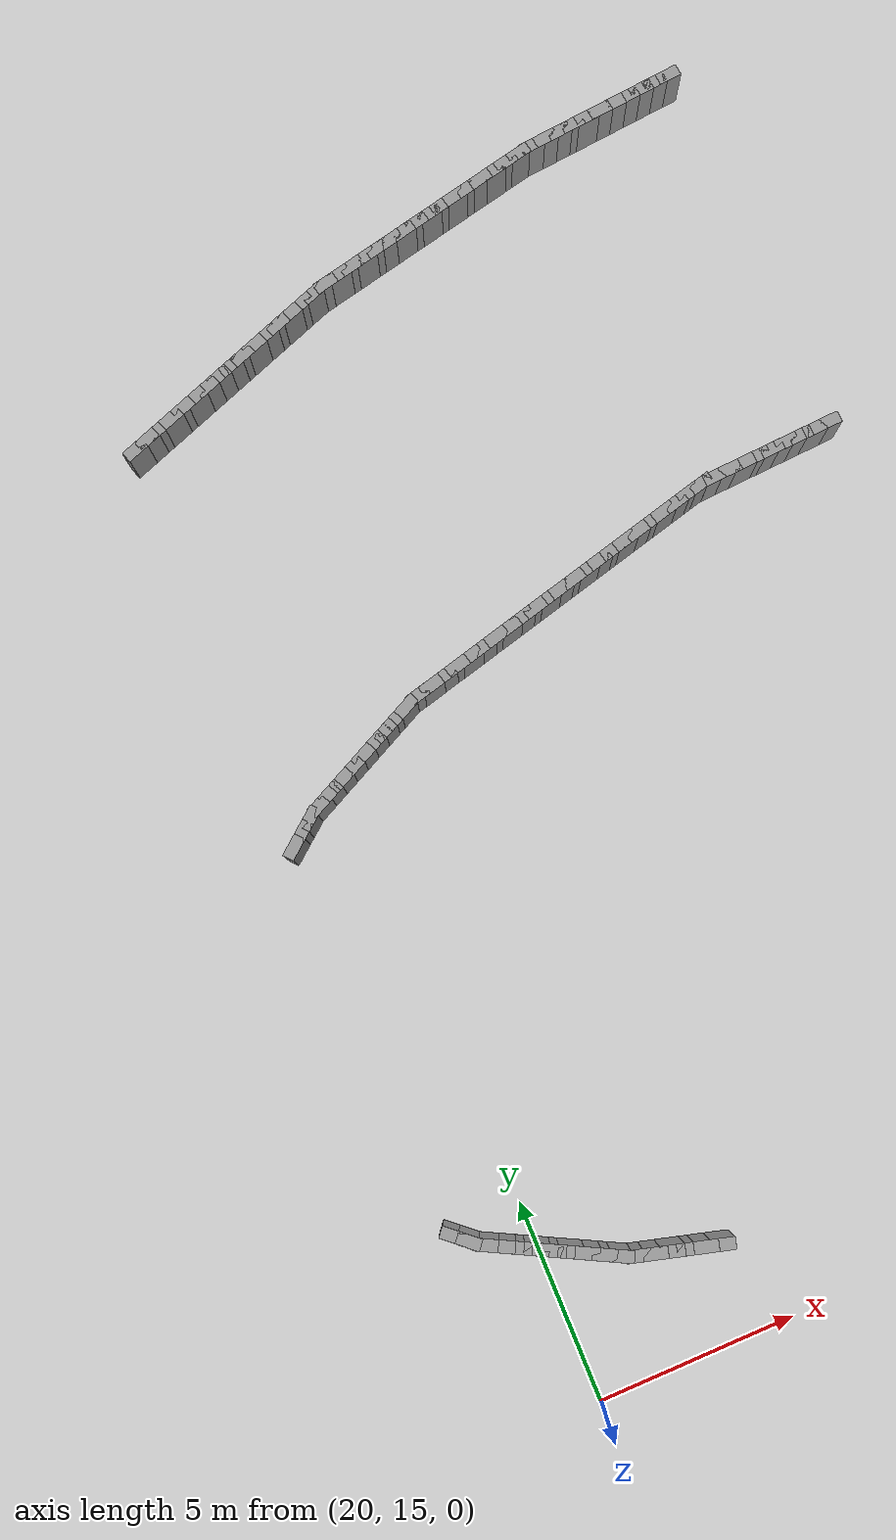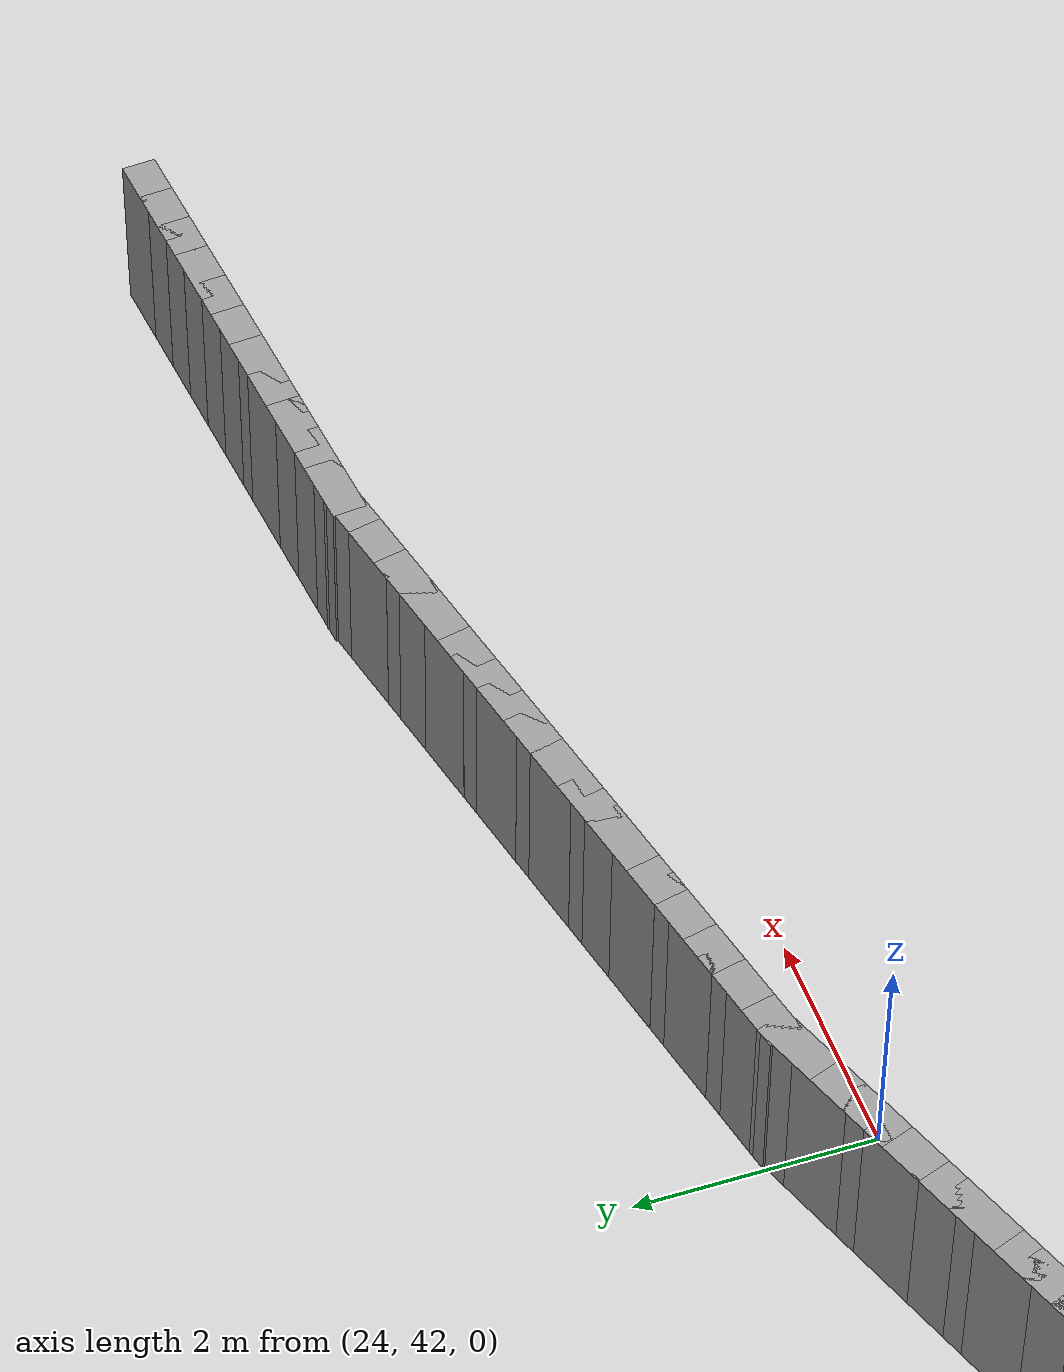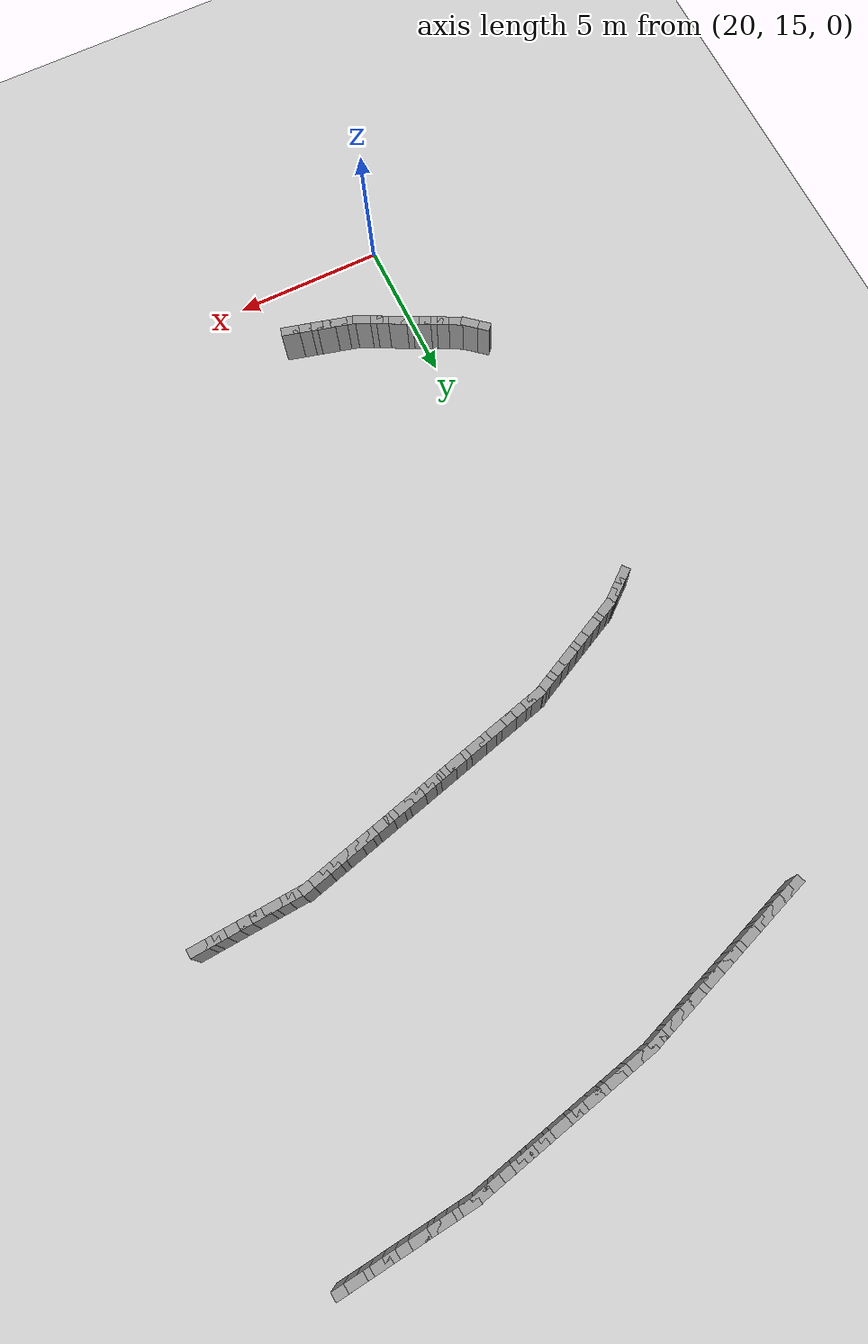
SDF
<sdf version="1.5">
 <world name="ellipse_loop">
  <include><uri>model://sun</uri></include>
  <include><uri>model://ground_plane</uri></include>
  <model name="curbL_349">
   <static>true</static>
   <pose>34.582 44.639 0.750 0 0 -3.042</pose>
   <link name="link">
    <collision name="col"><geometry><box><size>0.600 0.300 1.500</size></box></geometry></collision>
    <visual name="vis">
     <geometry><box><size>0.600 0.300 1.500</size></box></geometry>
     <material><ambient>0.6 0.6 0.6 1</ambient><diffuse>0.6 0.6 0.6 1</diffuse></material>
    </visual>
   </link>
  </model>
  <model name="curbL_350">
   <static>true</static>
   <pose>34.184 44.599 0.750 0 0 -3.042</pose>
   <link name="link">
    <collision name="col"><geometry><box><size>0.600 0.300 1.500</size></box></geometry></collision>
    <visual name="vis">
     <geometry><box><size>0.600 0.300 1.500</size></box></geometry>
     <material><ambient>0.6 0.6 0.6 1</ambient><diffuse>0.6 0.6 0.6 1</diffuse></material>
    </visual>
   </link>
  </model>
  <model name="curbL_351">
   <static>true</static>
   <pose>33.786 44.559 0.750 0 0 -3.042</pose>
   <link name="link">
    <collision name="col"><geometry><box><size>0.600 0.300 1.500</size></box></geometry></collision>
    <visual name="vis">
     <geometry><box><size>0.600 0.300 1.500</size></box></geometry>
     <material><ambient>0.6 0.6 0.6 1</ambient><diffuse>0.6 0.6 0.6 1</diffuse></material>
    </visual>
   </link>
  </model>
  <model name="curbL_352">
   <static>true</static>
   <pose>33.388 44.519 0.750 0 0 -3.042</pose>
   <link name="link">
    <collision name="col"><geometry><box><size>0.600 0.300 1.500</size></box></geometry></collision>
    <visual name="vis">
     <geometry><box><size>0.600 0.300 1.500</size></box></geometry>
     <material><ambient>0.6 0.6 0.6 1</ambient><diffuse>0.6 0.6 0.6 1</diffuse></material>
    </visual>
   </link>
  </model>
  <model name="curbL_353">
   <static>true</static>
   <pose>32.990 44.479 0.750 0 0 -3.042</pose>
   <link name="link">
    <collision name="col"><geometry><box><size>0.600 0.300 1.500</size></box></geometry></collision>
    <visual name="vis">
     <geometry><box><size>0.600 0.300 1.500</size></box></geometry>
     <material><ambient>0.6 0.6 0.6 1</ambient><diffuse>0.6 0.6 0.6 1</diffuse></material>
    </visual>
   </link>
  </model>
  <model name="curbL_354">
   <static>true</static>
   <pose>32.592 44.439 0.750 0 0 -3.042</pose>
   <link name="link">
    <collision name="col"><geometry><box><size>0.600 0.300 1.500</size></box></geometry></collision>
    <visual name="vis">
     <geometry><box><size>0.600 0.300 1.500</size></box></geometry>
     <material><ambient>0.6 0.6 0.6 1</ambient><diffuse>0.6 0.6 0.6 1</diffuse></material>
    </visual>
   </link>
  </model>
  <model name="curbL_355">
   <static>true</static>
   <pose>32.194 44.399 0.750 0 0 -3.042</pose>
   <link name="link">
    <collision name="col"><geometry><box><size>0.600 0.300 1.500</size></box></geometry></collision>
    <visual name="vis">
     <geometry><box><size>0.600 0.300 1.500</size></box></geometry>
     <material><ambient>0.6 0.6 0.6 1</ambient><diffuse>0.6 0.6 0.6 1</diffuse></material>
    </visual>
   </link>
  </model>
  <model name="curbL_356">
   <static>true</static>
   <pose>31.796 44.360 0.750 0 0 -3.042</pose>
   <link name="link">
    <collision name="col"><geometry><box><size>0.600 0.300 1.500</size></box></geometry></collision>
    <visual name="vis">
     <geometry><box><size>0.600 0.300 1.500</size></box></geometry>
     <material><ambient>0.6 0.6 0.6 1</ambient><diffuse>0.6 0.6 0.6 1</diffuse></material>
    </visual>
   </link>
  </model>
  <model name="curbL_357">
   <static>true</static>
   <pose>31.398 44.320 0.750 0 0 -3.042</pose>
   <link name="link">
    <collision name="col"><geometry><box><size>0.600 0.300 1.500</size></box></geometry></collision>
    <visual name="vis">
     <geometry><box><size>0.600 0.300 1.500</size></box></geometry>
     <material><ambient>0.6 0.6 0.6 1</ambient><diffuse>0.6 0.6 0.6 1</diffuse></material>
    </visual>
   </link>
  </model>
  <model name="curbL_358">
   <static>true</static>
   <pose>31.000 44.280 0.750 0 0 -3.042</pose>
   <link name="link">
    <collision name="col"><geometry><box><size>0.600 0.300 1.500</size></box></geometry></collision>
    <visual name="vis">
     <geometry><box><size>0.600 0.300 1.500</size></box></geometry>
     <material><ambient>0.6 0.6 0.6 1</ambient><diffuse>0.6 0.6 0.6 1</diffuse></material>
    </visual>
   </link>
  </model>
  <model name="curbL_359">
   <static>true</static>
   <pose>30.602 44.240 0.750 0 0 -3.042</pose>
   <link name="link">
    <collision name="col"><geometry><box><size>0.600 0.300 1.500</size></box></geometry></collision>
    <visual name="vis">
     <geometry><box><size>0.600 0.300 1.500</size></box></geometry>
     <material><ambient>0.6 0.6 0.6 1</ambient><diffuse>0.6 0.6 0.6 1</diffuse></material>
    </visual>
   </link>
  </model>
  <model name="curbL_360">
   <static>true</static>
   <pose>30.209 44.170 0.750 0 0 -2.921</pose>
   <link name="link">
    <collision name="col"><geometry><box><size>0.600 0.300 1.500</size></box></geometry></collision>
    <visual name="vis">
     <geometry><box><size>0.600 0.300 1.500</size></box></geometry>
     <material><ambient>0.6 0.6 0.6 1</ambient><diffuse>0.6 0.6 0.6 1</diffuse></material>
    </visual>
   </link>
  </model>
  <model name="curbL_361">
   <static>true</static>
   <pose>29.818 44.083 0.750 0 0 -2.921</pose>
   <link name="link">
    <collision name="col"><geometry><box><size>0.600 0.300 1.500</size></box></geometry></collision>
    <visual name="vis">
     <geometry><box><size>0.600 0.300 1.500</size></box></geometry>
     <material><ambient>0.6 0.6 0.6 1</ambient><diffuse>0.6 0.6 0.6 1</diffuse></material>
    </visual>
   </link>
  </model>
  <model name="curbL_362">
   <static>true</static>
   <pose>29.428 43.995 0.750 0 0 -2.921</pose>
   <link name="link">
    <collision name="col"><geometry><box><size>0.600 0.300 1.500</size></box></geometry></collision>
    <visual name="vis">
     <geometry><box><size>0.600 0.300 1.500</size></box></geometry>
     <material><ambient>0.6 0.6 0.6 1</ambient><diffuse>0.6 0.6 0.6 1</diffuse></material>
    </visual>
   </link>
  </model>
  <model name="curbL_363">
   <static>true</static>
   <pose>29.038 43.908 0.750 0 0 -2.921</pose>
   <link name="link">
    <collision name="col"><geometry><box><size>0.600 0.300 1.500</size></box></geometry></collision>
    <visual name="vis">
     <geometry><box><size>0.600 0.300 1.500</size></box></geometry>
     <material><ambient>0.6 0.6 0.6 1</ambient><diffuse>0.6 0.6 0.6 1</diffuse></material>
    </visual>
   </link>
  </model>
  <model name="curbL_364">
   <static>true</static>
   <pose>28.647 43.821 0.750 0 0 -2.921</pose>
   <link name="link">
    <collision name="col"><geometry><box><size>0.600 0.300 1.500</size></box></geometry></collision>
    <visual name="vis">
     <geometry><box><size>0.600 0.300 1.500</size></box></geometry>
     <material><ambient>0.6 0.6 0.6 1</ambient><diffuse>0.6 0.6 0.6 1</diffuse></material>
    </visual>
   </link>
  </model>
  <model name="curbL_365">
   <static>true</static>
   <pose>28.257 43.733 0.750 0 0 -2.921</pose>
   <link name="link">
    <collision name="col"><geometry><box><size>0.600 0.300 1.500</size></box></geometry></collision>
    <visual name="vis">
     <geometry><box><size>0.600 0.300 1.500</size></box></geometry>
     <material><ambient>0.6 0.6 0.6 1</ambient><diffuse>0.6 0.6 0.6 1</diffuse></material>
    </visual>
   </link>
  </model>
  <model name="curbL_366">
   <static>true</static>
   <pose>27.867 43.646 0.750 0 0 -2.921</pose>
   <link name="link">
    <collision name="col"><geometry><box><size>0.600 0.300 1.500</size></box></geometry></collision>
    <visual name="vis">
     <geometry><box><size>0.600 0.300 1.500</size></box></geometry>
     <material><ambient>0.6 0.6 0.6 1</ambient><diffuse>0.6 0.6 0.6 1</diffuse></material>
    </visual>
   </link>
  </model>
  <model name="curbL_367">
   <static>true</static>
   <pose>27.476 43.558 0.750 0 0 -2.921</pose>
   <link name="link">
    <collision name="col"><geometry><box><size>0.600 0.300 1.500</size></box></geometry></collision>
    <visual name="vis">
     <geometry><box><size>0.600 0.300 1.500</size></box></geometry>
     <material><ambient>0.6 0.6 0.6 1</ambient><diffuse>0.6 0.6 0.6 1</diffuse></material>
    </visual>
   </link>
  </model>
  <model name="curbL_368">
   <static>true</static>
   <pose>27.086 43.471 0.750 0 0 -2.921</pose>
   <link name="link">
    <collision name="col"><geometry><box><size>0.600 0.300 1.500</size></box></geometry></collision>
    <visual name="vis">
     <geometry><box><size>0.600 0.300 1.500</size></box></geometry>
     <material><ambient>0.6 0.6 0.6 1</ambient><diffuse>0.6 0.6 0.6 1</diffuse></material>
    </visual>
   </link>
  </model>
  <model name="curbL_369">
   <static>true</static>
   <pose>26.696 43.383 0.750 0 0 -2.921</pose>
   <link name="link">
    <collision name="col"><geometry><box><size>0.600 0.300 1.500</size></box></geometry></collision>
    <visual name="vis">
     <geometry><box><size>0.600 0.300 1.500</size></box></geometry>
     <material><ambient>0.6 0.6 0.6 1</ambient><diffuse>0.6 0.6 0.6 1</diffuse></material>
    </visual>
   </link>
  </model>
  <model name="curbL_370">
   <static>true</static>
   <pose>26.305 43.296 0.750 0 0 -2.921</pose>
   <link name="link">
    <collision name="col"><geometry><box><size>0.600 0.300 1.500</size></box></geometry></collision>
    <visual name="vis">
     <geometry><box><size>0.600 0.300 1.500</size></box></geometry>
     <material><ambient>0.6 0.6 0.6 1</ambient><diffuse>0.6 0.6 0.6 1</diffuse></material>
    </visual>
   </link>
  </model>
  <model name="curbL_371">
   <static>true</static>
   <pose>25.915 43.209 0.750 0 0 -2.921</pose>
   <link name="link">
    <collision name="col"><geometry><box><size>0.600 0.300 1.500</size></box></geometry></collision>
    <visual name="vis">
     <geometry><box><size>0.600 0.300 1.500</size></box></geometry>
     <material><ambient>0.6 0.6 0.6 1</ambient><diffuse>0.6 0.6 0.6 1</diffuse></material>
    </visual>
   </link>
  </model>
  <model name="curbL_372">
   <static>true</static>
   <pose>25.525 43.121 0.750 0 0 -2.921</pose>
   <link name="link">
    <collision name="col"><geometry><box><size>0.600 0.300 1.500</size></box></geometry></collision>
    <visual name="vis">
     <geometry><box><size>0.600 0.300 1.500</size></box></geometry>
     <material><ambient>0.6 0.6 0.6 1</ambient><diffuse>0.6 0.6 0.6 1</diffuse></material>
    </visual>
   </link>
  </model>
  <model name="curbL_373">
   <static>true</static>
   <pose>25.134 43.034 0.750 0 0 -2.921</pose>
   <link name="link">
    <collision name="col"><geometry><box><size>0.600 0.300 1.500</size></box></geometry></collision>
    <visual name="vis">
     <geometry><box><size>0.600 0.300 1.500</size></box></geometry>
     <material><ambient>0.6 0.6 0.6 1</ambient><diffuse>0.6 0.6 0.6 1</diffuse></material>
    </visual>
   </link>
  </model>
  <model name="curbL_374">
   <static>true</static>
   <pose>24.744 42.946 0.750 0 0 -2.921</pose>
   <link name="link">
    <collision name="col"><geometry><box><size>0.600 0.300 1.500</size></box></geometry></collision>
    <visual name="vis">
     <geometry><box><size>0.600 0.300 1.500</size></box></geometry>
     <material><ambient>0.6 0.6 0.6 1</ambient><diffuse>0.6 0.6 0.6 1</diffuse></material>
    </visual>
   </link>
  </model>
  <model name="curbL_375">
   <static>true</static>
   <pose>24.354 42.859 0.750 0 0 -2.921</pose>
   <link name="link">
    <collision name="col"><geometry><box><size>0.600 0.300 1.500</size></box></geometry></collision>
    <visual name="vis">
     <geometry><box><size>0.600 0.300 1.500</size></box></geometry>
     <material><ambient>0.6 0.6 0.6 1</ambient><diffuse>0.6 0.6 0.6 1</diffuse></material>
    </visual>
   </link>
  </model>
  <model name="curbL_376">
   <static>true</static>
   <pose>23.973 42.740 0.750 0 0 -2.789</pose>
   <link name="link">
    <collision name="col"><geometry><box><size>0.600 0.300 1.500</size></box></geometry></collision>
    <visual name="vis">
     <geometry><box><size>0.600 0.300 1.500</size></box></geometry>
     <material><ambient>0.6 0.6 0.6 1</ambient><diffuse>0.6 0.6 0.6 1</diffuse></material>
    </visual>
   </link>
  </model>
  <model name="curbL_377">
   <static>true</static>
   <pose>23.597 42.602 0.750 0 0 -2.789</pose>
   <link name="link">
    <collision name="col"><geometry><box><size>0.600 0.300 1.500</size></box></geometry></collision>
    <visual name="vis">
     <geometry><box><size>0.600 0.300 1.500</size></box></geometry>
     <material><ambient>0.6 0.6 0.6 1</ambient><diffuse>0.6 0.6 0.6 1</diffuse></material>
    </visual>
   </link>
  </model>
  <model name="curbL_378">
   <static>true</static>
   <pose>23.222 42.464 0.750 0 0 -2.789</pose>
   <link name="link">
    <collision name="col"><geometry><box><size>0.600 0.300 1.500</size></box></geometry></collision>
    <visual name="vis">
     <geometry><box><size>0.600 0.300 1.500</size></box></geometry>
     <material><ambient>0.6 0.6 0.6 1</ambient><diffuse>0.6 0.6 0.6 1</diffuse></material>
    </visual>
   </link>
  </model>
  <model name="curbL_379">
   <static>true</static>
   <pose>22.846 42.326 0.750 0 0 -2.789</pose>
   <link name="link">
    <collision name="col"><geometry><box><size>0.600 0.300 1.500</size></box></geometry></collision>
    <visual name="vis">
     <geometry><box><size>0.600 0.300 1.500</size></box></geometry>
     <material><ambient>0.6 0.6 0.6 1</ambient><diffuse>0.6 0.6 0.6 1</diffuse></material>
    </visual>
   </link>
  </model>
  <model name="curbL_380">
   <static>true</static>
   <pose>22.471 42.188 0.750 0 0 -2.789</pose>
   <link name="link">
    <collision name="col"><geometry><box><size>0.600 0.300 1.500</size></box></geometry></collision>
    <visual name="vis">
     <geometry><box><size>0.600 0.300 1.500</size></box></geometry>
     <material><ambient>0.6 0.6 0.6 1</ambient><diffuse>0.6 0.6 0.6 1</diffuse></material>
    </visual>
   </link>
  </model>
  <model name="curbL_381">
   <static>true</static>
   <pose>22.096 42.050 0.750 0 0 -2.789</pose>
   <link name="link">
    <collision name="col"><geometry><box><size>0.600 0.300 1.500</size></box></geometry></collision>
    <visual name="vis">
     <geometry><box><size>0.600 0.300 1.500</size></box></geometry>
     <material><ambient>0.6 0.6 0.6 1</ambient><diffuse>0.6 0.6 0.6 1</diffuse></material>
    </visual>
   </link>
  </model>
  <model name="curbL_382">
   <static>true</static>
   <pose>21.720 41.912 0.750 0 0 -2.789</pose>
   <link name="link">
    <collision name="col"><geometry><box><size>0.600 0.300 1.500</size></box></geometry></collision>
    <visual name="vis">
     <geometry><box><size>0.600 0.300 1.500</size></box></geometry>
     <material><ambient>0.6 0.6 0.6 1</ambient><diffuse>0.6 0.6 0.6 1</diffuse></material>
    </visual>
   </link>
  </model>
  <model name="curbL_383">
   <static>true</static>
   <pose>21.345 41.774 0.750 0 0 -2.789</pose>
   <link name="link">
    <collision name="col"><geometry><box><size>0.600 0.300 1.500</size></box></geometry></collision>
    <visual name="vis">
     <geometry><box><size>0.600 0.300 1.500</size></box></geometry>
     <material><ambient>0.6 0.6 0.6 1</ambient><diffuse>0.6 0.6 0.6 1</diffuse></material>
    </visual>
   </link>
  </model>
  <model name="curbL_384">
   <static>true</static>
   <pose>20.969 41.635 0.750 0 0 -2.789</pose>
   <link name="link">
    <collision name="col"><geometry><box><size>0.600 0.300 1.500</size></box></geometry></collision>
    <visual name="vis">
     <geometry><box><size>0.600 0.300 1.500</size></box></geometry>
     <material><ambient>0.6 0.6 0.6 1</ambient><diffuse>0.6 0.6 0.6 1</diffuse></material>
    </visual>
   </link>
  </model>
  <model name="curbL_385">
   <static>true</static>
   <pose>20.594 41.497 0.750 0 0 -2.789</pose>
   <link name="link">
    <collision name="col"><geometry><box><size>0.600 0.300 1.500</size></box></geometry></collision>
    <visual name="vis">
     <geometry><box><size>0.600 0.300 1.500</size></box></geometry>
     <material><ambient>0.6 0.6 0.6 1</ambient><diffuse>0.6 0.6 0.6 1</diffuse></material>
    </visual>
   </link>
  </model>
  <model name="curbL_386">
   <static>true</static>
   <pose>20.219 41.359 0.750 0 0 -2.789</pose>
   <link name="link">
    <collision name="col"><geometry><box><size>0.600 0.300 1.500</size></box></geometry></collision>
    <visual name="vis">
     <geometry><box><size>0.600 0.300 1.500</size></box></geometry>
     <material><ambient>0.6 0.6 0.6 1</ambient><diffuse>0.6 0.6 0.6 1</diffuse></material>
    </visual>
   </link>
  </model>
  <model name="curbL_387">
   <static>true</static>
   <pose>19.843 41.221 0.750 0 0 -2.789</pose>
   <link name="link">
    <collision name="col"><geometry><box><size>0.600 0.300 1.500</size></box></geometry></collision>
    <visual name="vis">
     <geometry><box><size>0.600 0.300 1.500</size></box></geometry>
     <material><ambient>0.6 0.6 0.6 1</ambient><diffuse>0.6 0.6 0.6 1</diffuse></material>
    </visual>
   </link>
  </model>
  <model name="curbL_388">
   <static>true</static>
   <pose>19.468 41.083 0.750 0 0 -2.789</pose>
   <link name="link">
    <collision name="col"><geometry><box><size>0.600 0.300 1.500</size></box></geometry></collision>
    <visual name="vis">
     <geometry><box><size>0.600 0.300 1.500</size></box></geometry>
     <material><ambient>0.6 0.6 0.6 1</ambient><diffuse>0.6 0.6 0.6 1</diffuse></material>
    </visual>
   </link>
  </model>
  <model name="curbL_389">
   <static>true</static>
   <pose>19.092 40.945 0.750 0 0 -2.789</pose>
   <link name="link">
    <collision name="col"><geometry><box><size>0.600 0.300 1.500</size></box></geometry></collision>
    <visual name="vis">
     <geometry><box><size>0.600 0.300 1.500</size></box></geometry>
     <material><ambient>0.6 0.6 0.6 1</ambient><diffuse>0.6 0.6 0.6 1</diffuse></material>
    </visual>
   </link>
  </model>
  <model name="curbL_390">
   <static>true</static>
   <pose>18.717 40.807 0.750 0 0 -2.789</pose>
   <link name="link">
    <collision name="col"><geometry><box><size>0.600 0.300 1.500</size></box></geometry></collision>
    <visual name="vis">
     <geometry><box><size>0.600 0.300 1.500</size></box></geometry>
     <material><ambient>0.6 0.6 0.6 1</ambient><diffuse>0.6 0.6 0.6 1</diffuse></material>
    </visual>
   </link>
  </model>
  <model name="curbL_391">
   <static>true</static>
   <pose>18.342 40.669 0.750 0 0 -2.789</pose>
   <link name="link">
    <collision name="col"><geometry><box><size>0.600 0.300 1.500</size></box></geometry></collision>
    <visual name="vis">
     <geometry><box><size>0.600 0.300 1.500</size></box></geometry>
     <material><ambient>0.6 0.6 0.6 1</ambient><diffuse>0.6 0.6 0.6 1</diffuse></material>
    </visual>
   </link>
  </model>
  <model name="curbR_15">
   <static>true</static>
   <pose>18.272 29.937 0.750 0 0 0.683</pose>
   <link name="link">
    <collision name="col"><geometry><box><size>0.600 0.300 1.500</size></box></geometry></collision>
    <visual name="vis">
     <geometry><box><size>0.600 0.300 1.500</size></box></geometry>
     <material><ambient>0.6 0.6 0.6 1</ambient><diffuse>0.6 0.6 0.6 1</diffuse></material>
    </visual>
   </link>
  </model>
  <model name="curbR_16">
   <static>true</static>
   <pose>18.582 30.190 0.750 0 0 0.683</pose>
   <link name="link">
    <collision name="col"><geometry><box><size>0.600 0.300 1.500</size></box></geometry></collision>
    <visual name="vis">
     <geometry><box><size>0.600 0.300 1.500</size></box></geometry>
     <material><ambient>0.6 0.6 0.6 1</ambient><diffuse>0.6 0.6 0.6 1</diffuse></material>
    </visual>
   </link>
  </model>
  <model name="curbR_17">
   <static>true</static>
   <pose>18.893 30.442 0.750 0 0 0.683</pose>
   <link name="link">
    <collision name="col"><geometry><box><size>0.600 0.300 1.500</size></box></geometry></collision>
    <visual name="vis">
     <geometry><box><size>0.600 0.300 1.500</size></box></geometry>
     <material><ambient>0.6 0.6 0.6 1</ambient><diffuse>0.6 0.6 0.6 1</diffuse></material>
    </visual>
   </link>
  </model>
  <model name="curbR_18">
   <static>true</static>
   <pose>19.231 30.651 0.750 0 0 0.458</pose>
   <link name="link">
    <collision name="col"><geometry><box><size>0.600 0.300 1.500</size></box></geometry></collision>
    <visual name="vis">
     <geometry><box><size>0.600 0.300 1.500</size></box></geometry>
     <material><ambient>0.6 0.6 0.6 1</ambient><diffuse>0.6 0.6 0.6 1</diffuse></material>
    </visual>
   </link>
  </model>
  <model name="curbR_19">
   <static>true</static>
   <pose>19.590 30.828 0.750 0 0 0.458</pose>
   <link name="link">
    <collision name="col"><geometry><box><size>0.600 0.300 1.500</size></box></geometry></collision>
    <visual name="vis">
     <geometry><box><size>0.600 0.300 1.500</size></box></geometry>
     <material><ambient>0.6 0.6 0.6 1</ambient><diffuse>0.6 0.6 0.6 1</diffuse></material>
    </visual>
   </link>
  </model>
  <model name="curbR_20">
   <static>true</static>
   <pose>19.948 31.005 0.750 0 0 0.458</pose>
   <link name="link">
    <collision name="col"><geometry><box><size>0.600 0.300 1.500</size></box></geometry></collision>
    <visual name="vis">
     <geometry><box><size>0.600 0.300 1.500</size></box></geometry>
     <material><ambient>0.6 0.6 0.6 1</ambient><diffuse>0.6 0.6 0.6 1</diffuse></material>
    </visual>
   </link>
  </model>
  <model name="curbR_21">
   <static>true</static>
   <pose>20.307 31.182 0.750 0 0 0.458</pose>
   <link name="link">
    <collision name="col"><geometry><box><size>0.600 0.300 1.500</size></box></geometry></collision>
    <visual name="vis">
     <geometry><box><size>0.600 0.300 1.500</size></box></geometry>
     <material><ambient>0.6 0.6 0.6 1</ambient><diffuse>0.6 0.6 0.6 1</diffuse></material>
    </visual>
   </link>
  </model>
  <model name="curbR_22">
   <static>true</static>
   <pose>20.666 31.359 0.750 0 0 0.458</pose>
   <link name="link">
    <collision name="col"><geometry><box><size>0.600 0.300 1.500</size></box></geometry></collision>
    <visual name="vis">
     <geometry><box><size>0.600 0.300 1.500</size></box></geometry>
     <material><ambient>0.6 0.6 0.6 1</ambient><diffuse>0.6 0.6 0.6 1</diffuse></material>
    </visual>
   </link>
  </model>
  <model name="curbR_23">
   <static>true</static>
   <pose>21.024 31.536 0.750 0 0 0.458</pose>
   <link name="link">
    <collision name="col"><geometry><box><size>0.600 0.300 1.500</size></box></geometry></collision>
    <visual name="vis">
     <geometry><box><size>0.600 0.300 1.500</size></box></geometry>
     <material><ambient>0.6 0.6 0.6 1</ambient><diffuse>0.6 0.6 0.6 1</diffuse></material>
    </visual>
   </link>
  </model>
  <model name="curbR_24">
   <static>true</static>
   <pose>21.383 31.713 0.750 0 0 0.458</pose>
   <link name="link">
    <collision name="col"><geometry><box><size>0.600 0.300 1.500</size></box></geometry></collision>
    <visual name="vis">
     <geometry><box><size>0.600 0.300 1.500</size></box></geometry>
     <material><ambient>0.6 0.6 0.6 1</ambient><diffuse>0.6 0.6 0.6 1</diffuse></material>
    </visual>
   </link>
  </model>
  <model name="curbR_25">
   <static>true</static>
   <pose>21.742 31.890 0.750 0 0 0.458</pose>
   <link name="link">
    <collision name="col"><geometry><box><size>0.600 0.300 1.500</size></box></geometry></collision>
    <visual name="vis">
     <geometry><box><size>0.600 0.300 1.500</size></box></geometry>
     <material><ambient>0.6 0.6 0.6 1</ambient><diffuse>0.6 0.6 0.6 1</diffuse></material>
    </visual>
   </link>
  </model>
  <model name="curbR_26">
   <static>true</static>
   <pose>22.101 32.066 0.750 0 0 0.458</pose>
   <link name="link">
    <collision name="col"><geometry><box><size>0.600 0.300 1.500</size></box></geometry></collision>
    <visual name="vis">
     <geometry><box><size>0.600 0.300 1.500</size></box></geometry>
     <material><ambient>0.6 0.6 0.6 1</ambient><diffuse>0.6 0.6 0.6 1</diffuse></material>
    </visual>
   </link>
  </model>
  <model name="curbR_27">
   <static>true</static>
   <pose>22.470 32.214 0.750 0 0 0.252</pose>
   <link name="link">
    <collision name="col"><geometry><box><size>0.600 0.300 1.500</size></box></geometry></collision>
    <visual name="vis">
     <geometry><box><size>0.600 0.300 1.500</size></box></geometry>
     <material><ambient>0.6 0.6 0.6 1</ambient><diffuse>0.6 0.6 0.6 1</diffuse></material>
    </visual>
   </link>
  </model>
  <model name="curbR_28">
   <static>true</static>
   <pose>22.858 32.313 0.750 0 0 0.252</pose>
   <link name="link">
    <collision name="col"><geometry><box><size>0.600 0.300 1.500</size></box></geometry></collision>
    <visual name="vis">
     <geometry><box><size>0.600 0.300 1.500</size></box></geometry>
     <material><ambient>0.6 0.6 0.6 1</ambient><diffuse>0.6 0.6 0.6 1</diffuse></material>
    </visual>
   </link>
  </model>
  <model name="curbR_29">
   <static>true</static>
   <pose>23.245 32.413 0.750 0 0 0.252</pose>
   <link name="link">
    <collision name="col"><geometry><box><size>0.600 0.300 1.500</size></box></geometry></collision>
    <visual name="vis">
     <geometry><box><size>0.600 0.300 1.500</size></box></geometry>
     <material><ambient>0.6 0.6 0.6 1</ambient><diffuse>0.6 0.6 0.6 1</diffuse></material>
    </visual>
   </link>
  </model>
  <model name="curbR_30">
   <static>true</static>
   <pose>23.633 32.513 0.750 0 0 0.252</pose>
   <link name="link">
    <collision name="col"><geometry><box><size>0.600 0.300 1.500</size></box></geometry></collision>
    <visual name="vis">
     <geometry><box><size>0.600 0.300 1.500</size></box></geometry>
     <material><ambient>0.6 0.6 0.6 1</ambient><diffuse>0.6 0.6 0.6 1</diffuse></material>
    </visual>
   </link>
  </model>
  <model name="curbR_31">
   <static>true</static>
   <pose>24.020 32.612 0.750 0 0 0.252</pose>
   <link name="link">
    <collision name="col"><geometry><box><size>0.600 0.300 1.500</size></box></geometry></collision>
    <visual name="vis">
     <geometry><box><size>0.600 0.300 1.500</size></box></geometry>
     <material><ambient>0.6 0.6 0.6 1</ambient><diffuse>0.6 0.6 0.6 1</diffuse></material>
    </visual>
   </link>
  </model>
  <model name="curbR_32">
   <static>true</static>
   <pose>24.407 32.712 0.750 0 0 0.252</pose>
   <link name="link">
    <collision name="col"><geometry><box><size>0.600 0.300 1.500</size></box></geometry></collision>
    <visual name="vis">
     <geometry><box><size>0.600 0.300 1.500</size></box></geometry>
     <material><ambient>0.6 0.6 0.6 1</ambient><diffuse>0.6 0.6 0.6 1</diffuse></material>
    </visual>
   </link>
  </model>
  <model name="curbR_33">
   <static>true</static>
   <pose>24.795 32.812 0.750 0 0 0.252</pose>
   <link name="link">
    <collision name="col"><geometry><box><size>0.600 0.300 1.500</size></box></geometry></collision>
    <visual name="vis">
     <geometry><box><size>0.600 0.300 1.500</size></box></geometry>
     <material><ambient>0.6 0.6 0.6 1</ambient><diffuse>0.6 0.6 0.6 1</diffuse></material>
    </visual>
   </link>
  </model>
  <model name="curbR_34">
   <static>true</static>
   <pose>25.182 32.911 0.750 0 0 0.252</pose>
   <link name="link">
    <collision name="col"><geometry><box><size>0.600 0.300 1.500</size></box></geometry></collision>
    <visual name="vis">
     <geometry><box><size>0.600 0.300 1.500</size></box></geometry>
     <material><ambient>0.6 0.6 0.6 1</ambient><diffuse>0.6 0.6 0.6 1</diffuse></material>
    </visual>
   </link>
  </model>
  <model name="curbR_35">
   <static>true</static>
   <pose>25.570 33.011 0.750 0 0 0.252</pose>
   <link name="link">
    <collision name="col"><geometry><box><size>0.600 0.300 1.500</size></box></geometry></collision>
    <visual name="vis">
     <geometry><box><size>0.600 0.300 1.500</size></box></geometry>
     <material><ambient>0.6 0.6 0.6 1</ambient><diffuse>0.6 0.6 0.6 1</diffuse></material>
    </visual>
   </link>
  </model>
  <model name="curbR_36">
   <static>true</static>
   <pose>25.957 33.111 0.750 0 0 0.252</pose>
   <link name="link">
    <collision name="col"><geometry><box><size>0.600 0.300 1.500</size></box></geometry></collision>
    <visual name="vis">
     <geometry><box><size>0.600 0.300 1.500</size></box></geometry>
     <material><ambient>0.6 0.6 0.6 1</ambient><diffuse>0.6 0.6 0.6 1</diffuse></material>
    </visual>
   </link>
  </model>
  <model name="curbR_37">
   <static>true</static>
   <pose>26.344 33.210 0.750 0 0 0.252</pose>
   <link name="link">
    <collision name="col"><geometry><box><size>0.600 0.300 1.500</size></box></geometry></collision>
    <visual name="vis">
     <geometry><box><size>0.600 0.300 1.500</size></box></geometry>
     <material><ambient>0.6 0.6 0.6 1</ambient><diffuse>0.6 0.6 0.6 1</diffuse></material>
    </visual>
   </link>
  </model>
  <model name="curbR_38">
   <static>true</static>
   <pose>26.732 33.310 0.750 0 0 0.252</pose>
   <link name="link">
    <collision name="col"><geometry><box><size>0.600 0.300 1.500</size></box></geometry></collision>
    <visual name="vis">
     <geometry><box><size>0.600 0.300 1.500</size></box></geometry>
     <material><ambient>0.6 0.6 0.6 1</ambient><diffuse>0.6 0.6 0.6 1</diffuse></material>
    </visual>
   </link>
  </model>
  <model name="curbR_39">
   <static>true</static>
   <pose>27.119 33.410 0.750 0 0 0.252</pose>
   <link name="link">
    <collision name="col"><geometry><box><size>0.600 0.300 1.500</size></box></geometry></collision>
    <visual name="vis">
     <geometry><box><size>0.600 0.300 1.500</size></box></geometry>
     <material><ambient>0.6 0.6 0.6 1</ambient><diffuse>0.6 0.6 0.6 1</diffuse></material>
    </visual>
   </link>
  </model>
  <model name="curbR_40">
   <static>true</static>
   <pose>27.506 33.509 0.750 0 0 0.252</pose>
   <link name="link">
    <collision name="col"><geometry><box><size>0.600 0.300 1.500</size></box></geometry></collision>
    <visual name="vis">
     <geometry><box><size>0.600 0.300 1.500</size></box></geometry>
     <material><ambient>0.6 0.6 0.6 1</ambient><diffuse>0.6 0.6 0.6 1</diffuse></material>
    </visual>
   </link>
  </model>
  <model name="curbR_41">
   <static>true</static>
   <pose>27.894 33.609 0.750 0 0 0.252</pose>
   <link name="link">
    <collision name="col"><geometry><box><size>0.600 0.300 1.500</size></box></geometry></collision>
    <visual name="vis">
     <geometry><box><size>0.600 0.300 1.500</size></box></geometry>
     <material><ambient>0.6 0.6 0.6 1</ambient><diffuse>0.6 0.6 0.6 1</diffuse></material>
    </visual>
   </link>
  </model>
  <model name="curbR_42">
   <static>true</static>
   <pose>28.281 33.709 0.750 0 0 0.252</pose>
   <link name="link">
    <collision name="col"><geometry><box><size>0.600 0.300 1.500</size></box></geometry></collision>
    <visual name="vis">
     <geometry><box><size>0.600 0.300 1.500</size></box></geometry>
     <material><ambient>0.6 0.6 0.6 1</ambient><diffuse>0.6 0.6 0.6 1</diffuse></material>
    </visual>
   </link>
  </model>
  <model name="curbR_43">
   <static>true</static>
   <pose>28.669 33.808 0.750 0 0 0.252</pose>
   <link name="link">
    <collision name="col"><geometry><box><size>0.600 0.300 1.500</size></box></geometry></collision>
    <visual name="vis">
     <geometry><box><size>0.600 0.300 1.500</size></box></geometry>
     <material><ambient>0.6 0.6 0.6 1</ambient><diffuse>0.6 0.6 0.6 1</diffuse></material>
    </visual>
   </link>
  </model>
  <model name="curbR_44">
   <static>true</static>
   <pose>29.056 33.908 0.750 0 0 0.252</pose>
   <link name="link">
    <collision name="col"><geometry><box><size>0.600 0.300 1.500</size></box></geometry></collision>
    <visual name="vis">
     <geometry><box><size>0.600 0.300 1.500</size></box></geometry>
     <material><ambient>0.6 0.6 0.6 1</ambient><diffuse>0.6 0.6 0.6 1</diffuse></material>
    </visual>
   </link>
  </model>
  <model name="curbR_45">
   <static>true</static>
   <pose>29.443 34.008 0.750 0 0 0.252</pose>
   <link name="link">
    <collision name="col"><geometry><box><size>0.600 0.300 1.500</size></box></geometry></collision>
    <visual name="vis">
     <geometry><box><size>0.600 0.300 1.500</size></box></geometry>
     <material><ambient>0.6 0.6 0.6 1</ambient><diffuse>0.6 0.6 0.6 1</diffuse></material>
    </visual>
   </link>
  </model>
  <model name="curbR_46">
   <static>true</static>
   <pose>29.831 34.107 0.750 0 0 0.252</pose>
   <link name="link">
    <collision name="col"><geometry><box><size>0.600 0.300 1.500</size></box></geometry></collision>
    <visual name="vis">
     <geometry><box><size>0.600 0.300 1.500</size></box></geometry>
     <material><ambient>0.6 0.6 0.6 1</ambient><diffuse>0.6 0.6 0.6 1</diffuse></material>
    </visual>
   </link>
  </model>
  <model name="curbR_47">
   <static>true</static>
   <pose>30.218 34.207 0.750 0 0 0.252</pose>
   <link name="link">
    <collision name="col"><geometry><box><size>0.600 0.300 1.500</size></box></geometry></collision>
    <visual name="vis">
     <geometry><box><size>0.600 0.300 1.500</size></box></geometry>
     <material><ambient>0.6 0.6 0.6 1</ambient><diffuse>0.6 0.6 0.6 1</diffuse></material>
    </visual>
   </link>
  </model>
  <model name="curbR_48">
   <static>true</static>
   <pose>30.606 34.307 0.750 0 0 0.252</pose>
   <link name="link">
    <collision name="col"><geometry><box><size>0.600 0.300 1.500</size></box></geometry></collision>
    <visual name="vis">
     <geometry><box><size>0.600 0.300 1.500</size></box></geometry>
     <material><ambient>0.6 0.6 0.6 1</ambient><diffuse>0.6 0.6 0.6 1</diffuse></material>
    </visual>
   </link>
  </model>
  <model name="curbR_49">
   <static>true</static>
   <pose>30.993 34.406 0.750 0 0 0.252</pose>
   <link name="link">
    <collision name="col"><geometry><box><size>0.600 0.300 1.500</size></box></geometry></collision>
    <visual name="vis">
     <geometry><box><size>0.600 0.300 1.500</size></box></geometry>
     <material><ambient>0.6 0.6 0.6 1</ambient><diffuse>0.6 0.6 0.6 1</diffuse></material>
    </visual>
   </link>
  </model>
  <model name="curbR_50">
   <static>true</static>
   <pose>31.390 34.444 0.750 0 0 0.058</pose>
   <link name="link">
    <collision name="col"><geometry><box><size>0.600 0.300 1.500</size></box></geometry></collision>
    <visual name="vis">
     <geometry><box><size>0.600 0.300 1.500</size></box></geometry>
     <material><ambient>0.6 0.6 0.6 1</ambient><diffuse>0.6 0.6 0.6 1</diffuse></material>
    </visual>
   </link>
  </model>
  <model name="curbR_51">
   <static>true</static>
   <pose>31.789 34.467 0.750 0 0 0.058</pose>
   <link name="link">
    <collision name="col"><geometry><box><size>0.600 0.300 1.500</size></box></geometry></collision>
    <visual name="vis">
     <geometry><box><size>0.600 0.300 1.500</size></box></geometry>
     <material><ambient>0.6 0.6 0.6 1</ambient><diffuse>0.6 0.6 0.6 1</diffuse></material>
    </visual>
   </link>
  </model>
  <model name="curbR_52">
   <static>true</static>
   <pose>32.189 34.490 0.750 0 0 0.058</pose>
   <link name="link">
    <collision name="col"><geometry><box><size>0.600 0.300 1.500</size></box></geometry></collision>
    <visual name="vis">
     <geometry><box><size>0.600 0.300 1.500</size></box></geometry>
     <material><ambient>0.6 0.6 0.6 1</ambient><diffuse>0.6 0.6 0.6 1</diffuse></material>
    </visual>
   </link>
  </model>
  <model name="curbR_53">
   <static>true</static>
   <pose>32.588 34.514 0.750 0 0 0.058</pose>
   <link name="link">
    <collision name="col"><geometry><box><size>0.600 0.300 1.500</size></box></geometry></collision>
    <visual name="vis">
     <geometry><box><size>0.600 0.300 1.500</size></box></geometry>
     <material><ambient>0.6 0.6 0.6 1</ambient><diffuse>0.6 0.6 0.6 1</diffuse></material>
    </visual>
   </link>
  </model>
  <model name="curbR_54">
   <static>true</static>
   <pose>32.987 34.537 0.750 0 0 0.058</pose>
   <link name="link">
    <collision name="col"><geometry><box><size>0.600 0.300 1.500</size></box></geometry></collision>
    <visual name="vis">
     <geometry><box><size>0.600 0.300 1.500</size></box></geometry>
     <material><ambient>0.6 0.6 0.6 1</ambient><diffuse>0.6 0.6 0.6 1</diffuse></material>
    </visual>
   </link>
  </model>
  <model name="curbR_55">
   <static>true</static>
   <pose>33.387 34.560 0.750 0 0 0.058</pose>
   <link name="link">
    <collision name="col"><geometry><box><size>0.600 0.300 1.500</size></box></geometry></collision>
    <visual name="vis">
     <geometry><box><size>0.600 0.300 1.500</size></box></geometry>
     <material><ambient>0.6 0.6 0.6 1</ambient><diffuse>0.6 0.6 0.6 1</diffuse></material>
    </visual>
   </link>
  </model>
  <model name="curbR_56">
   <static>true</static>
   <pose>33.786 34.583 0.750 0 0 0.058</pose>
   <link name="link">
    <collision name="col"><geometry><box><size>0.600 0.300 1.500</size></box></geometry></collision>
    <visual name="vis">
     <geometry><box><size>0.600 0.300 1.500</size></box></geometry>
     <material><ambient>0.6 0.6 0.6 1</ambient><diffuse>0.6 0.6 0.6 1</diffuse></material>
    </visual>
   </link>
  </model>
  <model name="curbR_57">
   <static>true</static>
   <pose>34.185 34.606 0.750 0 0 0.058</pose>
   <link name="link">
    <collision name="col"><geometry><box><size>0.600 0.300 1.500</size></box></geometry></collision>
    <visual name="vis">
     <geometry><box><size>0.600 0.300 1.500</size></box></geometry>
     <material><ambient>0.6 0.6 0.6 1</ambient><diffuse>0.6 0.6 0.6 1</diffuse></material>
    </visual>
   </link>
  </model>
  <model name="curbR_58">
   <static>true</static>
   <pose>34.585 34.630 0.750 0 0 0.058</pose>
   <link name="link">
    <collision name="col"><geometry><box><size>0.600 0.300 1.500</size></box></geometry></collision>
    <visual name="vis">
     <geometry><box><size>0.600 0.300 1.500</size></box></geometry>
     <material><ambient>0.6 0.6 0.6 1</ambient><diffuse>0.6 0.6 0.6 1</diffuse></material>
    </visual>
   </link>
  </model>
  <model name="curbR_256">
   <static>true</static>
   <pose>24.049 17.396 0.750 0 0 2.873</pose>
   <link name="link">
    <collision name="col"><geometry><box><size>0.600 0.300 1.500</size></box></geometry></collision>
    <visual name="vis">
     <geometry><box><size>0.600 0.300 1.500</size></box></geometry>
     <material><ambient>0.6 0.6 0.6 1</ambient><diffuse>0.6 0.6 0.6 1</diffuse></material>
    </visual>
   </link>
  </model>
  <model name="curbR_257">
   <static>true</static>
   <pose>23.663 17.502 0.750 0 0 2.873</pose>
   <link name="link">
    <collision name="col"><geometry><box><size>0.600 0.300 1.500</size></box></geometry></collision>
    <visual name="vis">
     <geometry><box><size>0.600 0.300 1.500</size></box></geometry>
     <material><ambient>0.6 0.6 0.6 1</ambient><diffuse>0.6 0.6 0.6 1</diffuse></material>
    </visual>
   </link>
  </model>
  <model name="curbR_258">
   <static>true</static>
   <pose>23.277 17.608 0.750 0 0 2.873</pose>
   <link name="link">
    <collision name="col"><geometry><box><size>0.600 0.300 1.500</size></box></geometry></collision>
    <visual name="vis">
     <geometry><box><size>0.600 0.300 1.500</size></box></geometry>
     <material><ambient>0.6 0.6 0.6 1</ambient><diffuse>0.6 0.6 0.6 1</diffuse></material>
    </visual>
   </link>
  </model>
  <model name="curbR_259">
   <static>true</static>
   <pose>22.892 17.714 0.750 0 0 2.873</pose>
   <link name="link">
    <collision name="col"><geometry><box><size>0.600 0.300 1.500</size></box></geometry></collision>
    <visual name="vis">
     <geometry><box><size>0.600 0.300 1.500</size></box></geometry>
     <material><ambient>0.6 0.6 0.6 1</ambient><diffuse>0.6 0.6 0.6 1</diffuse></material>
    </visual>
   </link>
  </model>
  <model name="curbR_260">
   <static>true</static>
   <pose>22.506 17.820 0.750 0 0 2.873</pose>
   <link name="link">
    <collision name="col"><geometry><box><size>0.600 0.300 1.500</size></box></geometry></collision>
    <visual name="vis">
     <geometry><box><size>0.600 0.300 1.500</size></box></geometry>
     <material><ambient>0.6 0.6 0.6 1</ambient><diffuse>0.6 0.6 0.6 1</diffuse></material>
    </visual>
   </link>
  </model>
  <model name="curbR_261">
   <static>true</static>
   <pose>22.120 17.926 0.750 0 0 2.873</pose>
   <link name="link">
    <collision name="col"><geometry><box><size>0.600 0.300 1.500</size></box></geometry></collision>
    <visual name="vis">
     <geometry><box><size>0.600 0.300 1.500</size></box></geometry>
     <material><ambient>0.6 0.6 0.6 1</ambient><diffuse>0.6 0.6 0.6 1</diffuse></material>
    </visual>
   </link>
  </model>
  <model name="curbR_262">
   <static>true</static>
   <pose>21.751 18.074 0.750 0 0 2.665</pose>
   <link name="link">
    <collision name="col"><geometry><box><size>0.600 0.300 1.500</size></box></geometry></collision>
    <visual name="vis">
     <geometry><box><size>0.600 0.300 1.500</size></box></geometry>
     <material><ambient>0.6 0.6 0.6 1</ambient><diffuse>0.6 0.6 0.6 1</diffuse></material>
    </visual>
   </link>
  </model>
  <model name="curbR_263">
   <static>true</static>
   <pose>21.396 18.257 0.750 0 0 2.665</pose>
   <link name="link">
    <collision name="col"><geometry><box><size>0.600 0.300 1.500</size></box></geometry></collision>
    <visual name="vis">
     <geometry><box><size>0.600 0.300 1.500</size></box></geometry>
     <material><ambient>0.6 0.6 0.6 1</ambient><diffuse>0.6 0.6 0.6 1</diffuse></material>
    </visual>
   </link>
  </model>
  <model name="curbR_264">
   <static>true</static>
   <pose>21.040 18.441 0.750 0 0 2.665</pose>
   <link name="link">
    <collision name="col"><geometry><box><size>0.600 0.300 1.500</size></box></geometry></collision>
    <visual name="vis">
     <geometry><box><size>0.600 0.300 1.500</size></box></geometry>
     <material><ambient>0.6 0.6 0.6 1</ambient><diffuse>0.6 0.6 0.6 1</diffuse></material>
    </visual>
   </link>
  </model>
  <model name="curbR_265">
   <static>true</static>
   <pose>20.685 18.625 0.750 0 0 2.665</pose>
   <link name="link">
    <collision name="col"><geometry><box><size>0.600 0.300 1.500</size></box></geometry></collision>
    <visual name="vis">
     <geometry><box><size>0.600 0.300 1.500</size></box></geometry>
     <material><ambient>0.6 0.6 0.6 1</ambient><diffuse>0.6 0.6 0.6 1</diffuse></material>
    </visual>
   </link>
  </model>
  <model name="curbR_266">
   <static>true</static>
   <pose>20.330 18.808 0.750 0 0 2.665</pose>
   <link name="link">
    <collision name="col"><geometry><box><size>0.600 0.300 1.500</size></box></geometry></collision>
    <visual name="vis">
     <geometry><box><size>0.600 0.300 1.500</size></box></geometry>
     <material><ambient>0.6 0.6 0.6 1</ambient><diffuse>0.6 0.6 0.6 1</diffuse></material>
    </visual>
   </link>
  </model>
  <model name="curbR_267">
   <static>true</static>
   <pose>19.974 18.992 0.750 0 0 2.665</pose>
   <link name="link">
    <collision name="col"><geometry><box><size>0.600 0.300 1.500</size></box></geometry></collision>
    <visual name="vis">
     <geometry><box><size>0.600 0.300 1.500</size></box></geometry>
     <material><ambient>0.6 0.6 0.6 1</ambient><diffuse>0.6 0.6 0.6 1</diffuse></material>
    </visual>
   </link>
  </model>
  <model name="curbR_268">
   <static>true</static>
   <pose>19.619 19.175 0.750 0 0 2.665</pose>
   <link name="link">
    <collision name="col"><geometry><box><size>0.600 0.300 1.500</size></box></geometry></collision>
    <visual name="vis">
     <geometry><box><size>0.600 0.300 1.500</size></box></geometry>
     <material><ambient>0.6 0.6 0.6 1</ambient><diffuse>0.6 0.6 0.6 1</diffuse></material>
    </visual>
   </link>
  </model>
  <model name="curbR_269">
   <static>true</static>
   <pose>19.264 19.359 0.750 0 0 2.665</pose>
   <link name="link">
    <collision name="col"><geometry><box><size>0.600 0.300 1.500</size></box></geometry></collision>
    <visual name="vis">
     <geometry><box><size>0.600 0.300 1.500</size></box></geometry>
     <material><ambient>0.6 0.6 0.6 1</ambient><diffuse>0.6 0.6 0.6 1</diffuse></material>
    </visual>
   </link>
  </model>
  <model name="curbR_270">
   <static>true</static>
   <pose>18.908 19.543 0.750 0 0 2.665</pose>
   <link name="link">
    <collision name="col"><geometry><box><size>0.600 0.300 1.500</size></box></geometry></collision>
    <visual name="vis">
     <geometry><box><size>0.600 0.300 1.500</size></box></geometry>
     <material><ambient>0.6 0.6 0.6 1</ambient><diffuse>0.6 0.6 0.6 1</diffuse></material>
    </visual>
   </link>
  </model>
  <model name="curbR_271">
   <static>true</static>
   <pose>18.583 19.771 0.750 0 0 2.425</pose>
   <link name="link">
    <collision name="col"><geometry><box><size>0.600 0.300 1.500</size></box></geometry></collision>
    <visual name="vis">
     <geometry><box><size>0.600 0.300 1.500</size></box></geometry>
     <material><ambient>0.6 0.6 0.6 1</ambient><diffuse>0.6 0.6 0.6 1</diffuse></material>
    </visual>
   </link>
  </model>
  <model name="curbR_272">
   <static>true</static>
   <pose>18.281 20.033 0.750 0 0 2.425</pose>
   <link name="link">
    <collision name="col"><geometry><box><size>0.600 0.300 1.500</size></box></geometry></collision>
    <visual name="vis">
     <geometry><box><size>0.600 0.300 1.500</size></box></geometry>
     <material><ambient>0.6 0.6 0.6 1</ambient><diffuse>0.6 0.6 0.6 1</diffuse></material>
    </visual>
   </link>
  </model>
 </world>
</sdf>
